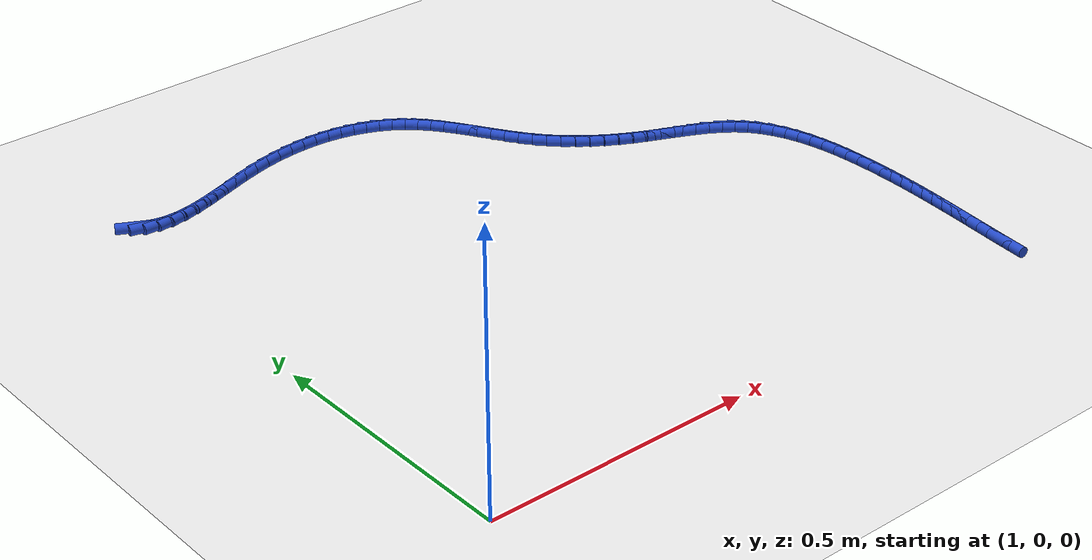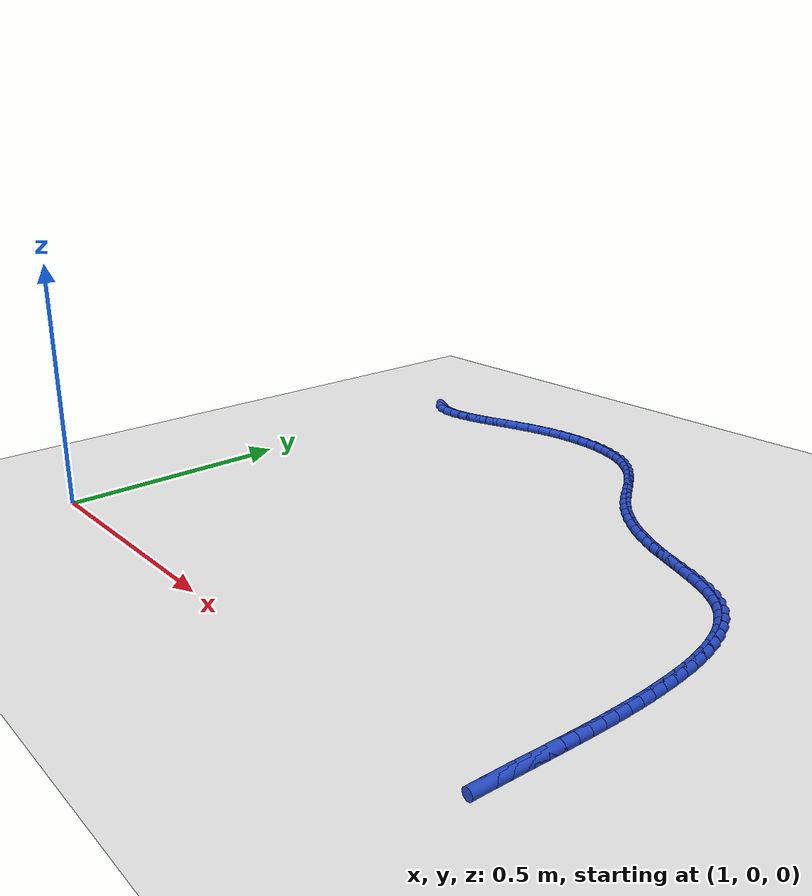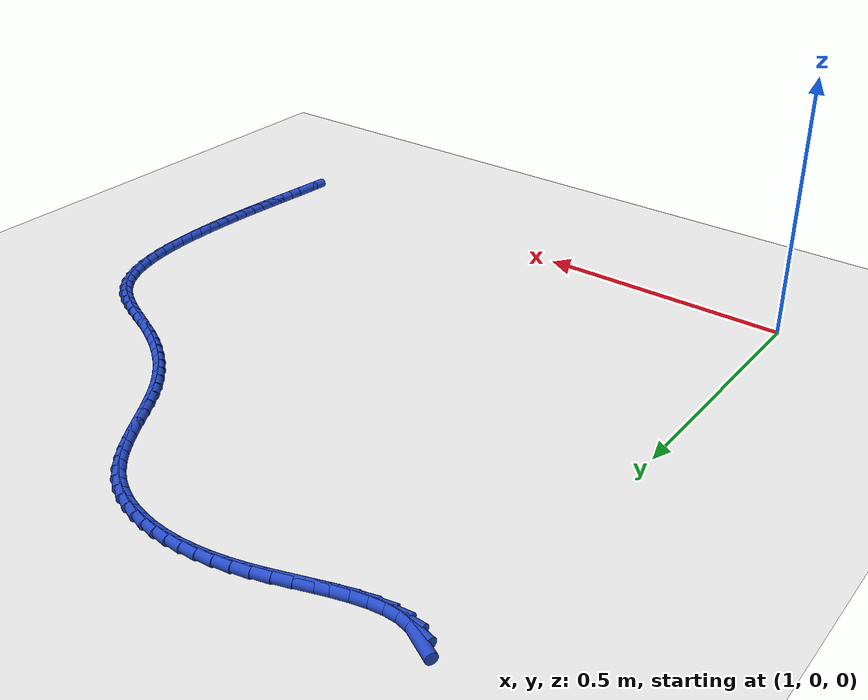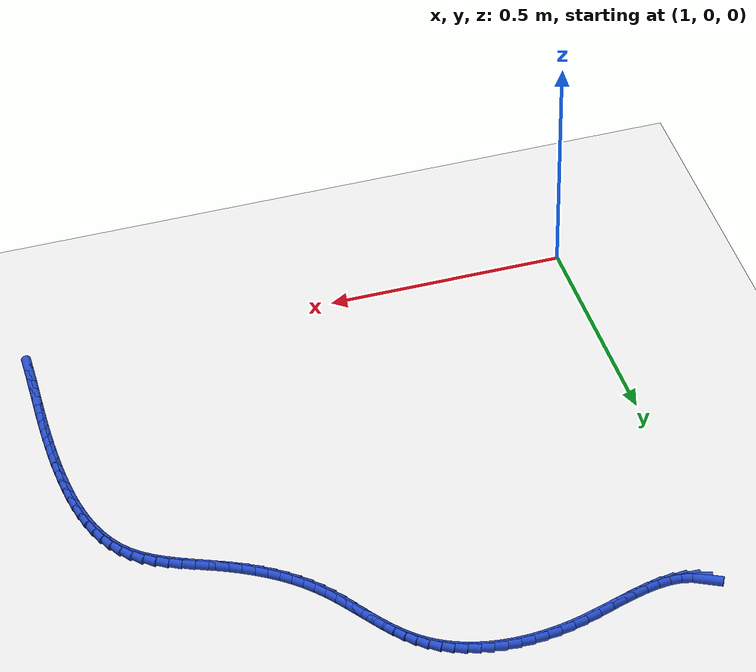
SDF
<sdf version="1.6">
 <world name="default">
  <model name="ground_plane">
   <static>1</static>
   <link name="link">
    <collision name="collision">
     <geometry><plane><normal>0 0 1</normal><size>100 100</size></plane></geometry>
     <surface><friction><ode><mu>100</mu><mu2>50</mu2></ode></friction></surface>
    </collision>
    <visual name="visual">
     <cast_shadows>0</cast_shadows>
     <geometry><plane><normal>0 0 1</normal><size>100 100</size></plane></geometry>
     <material>
      <script><uri>file://media/materials/scripts/gazebo.material</uri><name>Gazebo/WhiteGlow</name></script>
     </material>
    </visual>
   </link>
  </model>
  <model name="line">
   <link name="link_71">
    <pose>1.0518240321882353 1.0434926508809628 0.01 0 1.57 -0.4871833351723494</pose>
    <collision name="collision">
     <geometry><cylinder><radius>0.01</radius><length>0.08</length></cylinder></geometry>
    </collision>
    <visual name="visual">
     <material>
      <script><name>Gazebo/Blue</name><uri>file://media/materials/scripts/gazebo.material</uri></script>
     </material>
     <geometry><cylinder><radius>0.01</radius><length>0.08</length></cylinder></geometry>
    </visual>
   </link>
   <link name="link_72">
    <pose>1.0717406160468312 1.0329413317056149 0.01 0 1.57 -0.23223525083887703</pose>
    <collision name="collision">
     <geometry><cylinder><radius>0.01</radius><length>0.08</length></cylinder></geometry>
    </collision>
    <visual name="visual">
     <material>
      <script><name>Gazebo/Blue</name><uri>file://media/materials/scripts/gazebo.material</uri></script>
     </material>
     <geometry><cylinder><radius>0.01</radius><length>0.08</length></cylinder></geometry>
    </visual>
   </link>
   <link name="link_73">
    <pose>1.093928578310569 1.0276938254861652 0.01 0 1.57 -0.029379121388368363</pose>
    <collision name="collision">
     <geometry><cylinder><radius>0.01</radius><length>0.08</length></cylinder></geometry>
    </collision>
    <visual name="visual">
     <material>
      <script><name>Gazebo/Blue</name><uri>file://media/materials/scripts/gazebo.material</uri></script>
     </material>
     <geometry><cylinder><radius>0.01</radius><length>0.08</length></cylinder></geometry>
    </visual>
   </link>
   <link name="link_74">
    <pose>1.118115048039134 1.0269830437446132 0.01 0 1.57 0.11750350630852928</pose>
    <collision name="collision">
     <geometry><cylinder><radius>0.01</radius><length>0.08</length></cylinder></geometry>
    </collision>
    <visual name="visual">
     <material>
      <script><name>Gazebo/Blue</name><uri>file://media/materials/scripts/gazebo.material</uri></script>
     </material>
     <geometry><cylinder><radius>0.01</radius><length>0.08</length></cylinder></geometry>
    </visual>
   </link>
   <link name="link_75">
    <pose>1.1440271542922127 1.03004189800296 0.01 0 1.57 0.21798348509132873</pose>
    <collision name="collision">
     <geometry><cylinder><radius>0.01</radius><length>0.08</length></cylinder></geometry>
    </collision>
    <visual name="visual">
     <material>
      <script><name>Gazebo/Blue</name><uri>file://media/materials/scripts/gazebo.material</uri></script>
     </material>
     <geometry><cylinder><radius>0.01</radius><length>0.08</length></cylinder></geometry>
    </visual>
   </link>
   <link name="link_76">
    <pose>1.1713920261294903 1.0361032997832051 0.01 0 1.57 0.282867374164812</pose>
    <collision name="collision">
     <geometry><cylinder><radius>0.01</radius><length>0.08</length></cylinder></geometry>
    </collision>
    <visual name="visual">
     <material>
      <script><name>Gazebo/Blue</name><uri>file://media/materials/scripts/gazebo.material</uri></script>
     </material>
     <geometry><cylinder><radius>0.01</radius><length>0.08</length></cylinder></geometry>
    </visual>
   </link>
   <link name="link_77">
    <pose>1.1999367926106537 1.0444001606073499 0.01 0 1.57 0.320159697024955</pose>
    <collision name="collision">
     <geometry><cylinder><radius>0.01</radius><length>0.08</length></cylinder></geometry>
    </collision>
    <visual name="visual">
     <material>
      <script><name>Gazebo/Blue</name><uri>file://media/materials/scripts/gazebo.material</uri></script>
     </material>
     <geometry><cylinder><radius>0.01</radius><length>0.08</length></cylinder></geometry>
    </visual>
   </link>
   <link name="link_78">
    <pose>1.2293885827953885 1.0541653919973943 0.01 0 1.57 0.3347913247855372</pose>
    <collision name="collision">
     <geometry><cylinder><radius>0.01</radius><length>0.08</length></cylinder></geometry>
    </collision>
    <visual name="visual">
     <material>
      <script><name>Gazebo/Blue</name><uri>file://media/materials/scripts/gazebo.material</uri></script>
     </material>
     <geometry><cylinder><radius>0.01</radius><length>0.08</length></cylinder></geometry>
    </visual>
   </link>
   <link name="link_79">
    <pose>1.2594745257433806 1.0646319054753386 0.01 0 1.57 0.3291701039479456</pose>
    <collision name="collision">
     <geometry><cylinder><radius>0.01</radius><length>0.08</length></cylinder></geometry>
    </collision>
    <visual name="visual">
     <material>
      <script><name>Gazebo/Blue</name><uri>file://media/materials/scripts/gazebo.material</uri></script>
     </material>
     <geometry><cylinder><radius>0.01</radius><length>0.08</length></cylinder></geometry>
    </visual>
   </link>
   <link name="link_80">
    <pose>1.2899217505143157 1.0750326125631835 0.01 0 1.57 0.3036432765942432</pose>
    <collision name="collision">
     <geometry><cylinder><radius>0.01</radius><length>0.08</length></cylinder></geometry>
    </collision>
    <visual name="visual">
     <material>
      <script><name>Gazebo/Blue</name><uri>file://media/materials/scripts/gazebo.material</uri></script>
     </material>
     <geometry><cylinder><radius>0.01</radius><length>0.08</length></cylinder></geometry>
    </visual>
   </link>
   <link name="link_81">
    <pose>1.32045738616788 1.0846004247829288 0.01 0 1.57 0.25743303158049047</pose>
    <collision name="collision">
     <geometry><cylinder><radius>0.01</radius><length>0.08</length></cylinder></geometry>
    </collision>
    <visual name="visual">
     <material>
      <script><name>Gazebo/Blue</name><uri>file://media/materials/scripts/gazebo.material</uri></script>
     </material>
     <geometry><cylinder><radius>0.01</radius><length>0.08</length></cylinder></geometry>
    </visual>
   </link>
   <link name="link_82">
    <pose>1.350813701542081 1.0925924771898536 0.01 0 1.57 0.1995703546884958</pose>
    <collision name="collision">
     <geometry><cylinder><radius>0.01</radius><length>0.08</length></cylinder></geometry>
    </collision>
    <visual name="visual">
     <material>
      <script><name>Gazebo/Blue</name><uri>file://media/materials/scripts/gazebo.material</uri></script>
     </material>
     <geometry><cylinder><radius>0.01</radius><length>0.08</length></cylinder></geometry>
    </visual>
   </link>
   <link name="link_83">
    <pose>1.380806345853918 1.0986588726403668 0.01 0 1.57 0.13836589793485587</pose>
    <collision name="collision">
     <geometry><cylinder><radius>0.01</radius><length>0.08</length></cylinder></geometry>
    </collision>
    <visual name="visual">
     <material>
      <script><name>Gazebo/Blue</name><uri>file://media/materials/scripts/gazebo.material</uri></script>
     </material>
     <geometry><cylinder><radius>0.01</radius><length>0.08</length></cylinder></geometry>
    </visual>
   </link>
   <link name="link_84">
    <pose>1.4103186358640938 1.1027686279389566 0.01 0 1.57 0.0735719426953149</pose>
    <collision name="collision">
     <geometry><cylinder><radius>0.01</radius><length>0.08</length></cylinder></geometry>
    </collision>
    <visual name="visual">
     <material>
      <script><name>Gazebo/Blue</name><uri>file://media/materials/scripts/gazebo.material</uri></script>
     </material>
     <geometry><cylinder><radius>0.01</radius><length>0.08</length></cylinder></geometry>
    </visual>
   </link>
   <link name="link_85">
    <pose>1.439235842530674 1.104899969930293 0.01 0 1.57 0.004649652579881191</pose>
    <collision name="collision">
     <geometry><cylinder><radius>0.01</radius><length>0.08</length></cylinder></geometry>
    </collision>
    <visual name="visual">
     <material>
      <script><name>Gazebo/Blue</name><uri>file://media/materials/scripts/gazebo.material</uri></script>
     </material>
     <geometry><cylinder><radius>0.01</radius><length>0.08</length></cylinder></geometry>
    </visual>
   </link>
   <link name="link_86">
    <pose>1.467443236811725 1.1050311254590472 0.01 0 1.57 -0.068941229500601</pose>
    <collision name="collision">
     <geometry><cylinder><radius>0.01</radius><length>0.08</length></cylinder></geometry>
    </collision>
    <visual name="visual">
     <material>
      <script><name>Gazebo/Blue</name><uri>file://media/materials/scripts/gazebo.material</uri></script>
     </material>
     <geometry><cylinder><radius>0.01</radius><length>0.08</length></cylinder></geometry>
    </visual>
   </link>
   <link name="link_87">
    <pose>1.4948260896653125 1.1031403213698883 0.01 0 1.57 -0.14770622485574353</pose>
    <collision name="collision">
     <geometry><cylinder><radius>0.01</radius><length>0.08</length></cylinder></geometry>
    </collision>
    <visual name="visual">
     <material>
      <script><name>Gazebo/Blue</name><uri>file://media/materials/scripts/gazebo.material</uri></script>
     </material>
     <geometry><cylinder><radius>0.01</radius><length>0.08</length></cylinder></geometry>
    </visual>
   </link>
   <link name="link_88">
    <pose>1.5212696720495023 1.0992057845074865 0.01 0 1.57 -0.23206163604165247</pose>
    <collision name="collision">
     <geometry><cylinder><radius>0.01</radius><length>0.08</length></cylinder></geometry>
    </collision>
    <visual name="visual">
     <material>
      <script><name>Gazebo/Blue</name><uri>file://media/materials/scripts/gazebo.material</uri></script>
     </material>
     <geometry><cylinder><radius>0.01</radius><length>0.08</length></cylinder></geometry>
    </visual>
   </link>
   <link name="link_89">
    <pose>1.5466592549223601 1.093205741716513 0.01 0 1.57 -0.32225967340736156</pose>
    <collision name="collision">
     <geometry><cylinder><radius>0.01</radius><length>0.08</length></cylinder></geometry>
    </collision>
    <visual name="visual">
     <material>
      <script><name>Gazebo/Blue</name><uri>file://media/materials/scripts/gazebo.material</uri></script>
     </material>
     <geometry><cylinder><radius>0.01</radius><length>0.08</length></cylinder></geometry>
    </visual>
   </link>
   <link name="link_90">
    <pose>1.5708801092419526 1.0851184198416375 0.01 0 1.57 -0.41829624924878533</pose>
    <collision name="collision">
     <geometry><cylinder><radius>0.01</radius><length>0.08</length></cylinder></geometry>
    </collision>
    <visual name="visual">
     <material>
      <script><name>Gazebo/Blue</name><uri>file://media/materials/scripts/gazebo.material</uri></script>
     </material>
     <geometry><cylinder><radius>0.01</radius><length>0.08</length></cylinder></geometry>
    </visual>
   </link>
   <link name="link_91">
    <pose>1.5938175059663455 1.0749220457275301 0.01 0 1.57 -0.5198136172951838</pose>
    <collision name="collision">
     <geometry><cylinder><radius>0.01</radius><length>0.08</length></cylinder></geometry>
    </collision>
    <visual name="visual">
     <material>
      <script><name>Gazebo/Blue</name><uri>file://media/materials/scripts/gazebo.material</uri></script>
     </material>
     <geometry><cylinder><radius>0.01</radius><length>0.08</length></cylinder></geometry>
    </visual>
   </link>
   <link name="link_92">
    <pose>1.6153567160536046 1.0625948462188617 0.01 0 1.57 -0.6260218217038557</pose>
    <collision name="collision">
     <geometry><cylinder><radius>0.01</radius><length>0.08</length></cylinder></geometry>
    </collision>
    <visual name="visual">
     <material>
      <script><name>Gazebo/Blue</name><uri>file://media/materials/scripts/gazebo.material</uri></script>
     </material>
     <geometry><cylinder><radius>0.01</radius><length>0.08</length></cylinder></geometry>
    </visual>
   </link>
   <link name="link_93">
    <pose>1.6353830104617957 1.0481150481603019 0.01 0 1.57 -0.7349807484777467</pose>
    <collision name="collision">
     <geometry><cylinder><radius>0.01</radius><length>0.08</length></cylinder></geometry>
    </collision>
    <visual name="visual">
     <material>
      <script><name>Gazebo/Blue</name><uri>file://media/materials/scripts/gazebo.material</uri></script>
     </material>
     <geometry><cylinder><radius>0.01</radius><length>0.08</length></cylinder></geometry>
    </visual>
   </link>
   <link name="link_94">
    <pose>1.6537942600266167 1.03147261370742 0.01 0 1.57 -0.8329595768587374</pose>
    <collision name="collision">
     <geometry><cylinder><radius>0.01</radius><length>0.08</length></cylinder></geometry>
    </collision>
    <visual name="visual">
     <material>
      <script><name>Gazebo/Blue</name><uri>file://media/materials/scripts/gazebo.material</uri></script>
     </material>
     <geometry><cylinder><radius>0.01</radius><length>0.08</length></cylinder></geometry>
    </visual>
   </link>
   <link name="link_95">
    <pose>1.67071105895697 1.0128649457628593 0.01 0 1.57 -0.9090015001255707</pose>
    <collision name="collision">
     <geometry><cylinder><radius>0.01</radius><length>0.08</length></cylinder></geometry>
    </collision>
    <visual name="visual">
     <material>
      <script><name>Gazebo/Blue</name><uri>file://media/materials/scripts/gazebo.material</uri></script>
     </material>
     <geometry><cylinder><radius>0.01</radius><length>0.08</length></cylinder></geometry>
    </visual>
   </link>
   <link name="link_96">
    <pose>1.6864448190754133 0.9926671714966476 0.01 0 1.57 -0.9637353105981334</pose>
    <collision name="collision">
     <geometry><cylinder><radius>0.01</radius><length>0.08</length></cylinder></geometry>
    </collision>
    <visual name="visual">
     <material>
      <script><name>Gazebo/Blue</name><uri>file://media/materials/scripts/gazebo.material</uri></script>
     </material>
     <geometry><cylinder><radius>0.01</radius><length>0.08</length></cylinder></geometry>
    </visual>
   </link>
   <link name="link_97">
    <pose>1.7013131230737246 0.971260165521042 0.01 0 1.57 -0.9986233680445108</pose>
    <collision name="collision">
     <geometry><cylinder><radius>0.01</radius><length>0.08</length></cylinder></geometry>
    </collision>
    <visual name="visual">
     <material>
      <script><name>Gazebo/Blue</name><uri>file://media/materials/scripts/gazebo.material</uri></script>
     </material>
     <geometry><cylinder><radius>0.01</radius><length>0.08</length></cylinder></geometry>
    </visual>
   </link>
   <link name="link_98">
    <pose>1.7156335536436802 0.9490248024483002 0.01 0 1.57 -1.0149483823472332</pose>
    <collision name="collision">
     <geometry><cylinder><radius>0.01</radius><length>0.08</length></cylinder></geometry>
    </collision>
    <visual name="visual">
     <material>
      <script><name>Gazebo/Blue</name><uri>file://media/materials/scripts/gazebo.material</uri></script>
     </material>
     <geometry><cylinder><radius>0.01</radius><length>0.08</length></cylinder></geometry>
    </visual>
   </link>
   <link name="link_99">
    <pose>1.7297236934770592 0.9263419568906804 0.01 0 1.57 -1.013493314231102</pose>
    <collision name="collision">
     <geometry><cylinder><radius>0.01</radius><length>0.08</length></cylinder></geometry>
    </collision>
    <visual name="visual">
     <material>
      <script><name>Gazebo/Blue</name><uri>file://media/materials/scripts/gazebo.material</uri></script>
     </material>
     <geometry><cylinder><radius>0.01</radius><length>0.08</length></cylinder></geometry>
    </visual>
   </link>
   <link name="link_100">
    <pose>1.743901125265639 0.90359250346044 0.01 0 1.57 -0.9944388074913874</pose>
    <collision name="collision">
     <geometry><cylinder><radius>0.01</radius><length>0.08</length></cylinder></geometry>
    </collision>
    <visual name="visual">
     <material>
      <script><name>Gazebo/Blue</name><uri>file://media/materials/scripts/gazebo.material</uri></script>
     </material>
     <geometry><cylinder><radius>0.01</radius><length>0.08</length></cylinder></geometry>
    </visual>
   </link>
   <link name="link_101">
    <pose>1.7584834317011961 0.8811573167698373 0.01 0 1.57 -0.9573978570832319</pose>
    <collision name="collision">
     <geometry><cylinder><radius>0.01</radius><length>0.08</length></cylinder></geometry>
    </collision>
    <visual name="visual">
     <material>
      <script><name>Gazebo/Blue</name><uri>file://media/materials/scripts/gazebo.material</uri></script>
     </material>
     <geometry><cylinder><radius>0.01</radius><length>0.08</length></cylinder></geometry>
    </visual>
   </link>
   <link name="link_102">
    <pose>1.7737881954755097 0.8594172714311302 0.01 0 1.57 -0.9016184415037701</pose>
    <collision name="collision">
     <geometry><cylinder><radius>0.01</radius><length>0.08</length></cylinder></geometry>
    </collision>
    <visual name="visual">
     <material>
      <script><name>Gazebo/Blue</name><uri>file://media/materials/scripts/gazebo.material</uri></script>
     </material>
     <geometry><cylinder><radius>0.01</radius><length>0.08</length></cylinder></geometry>
    </visual>
   </link>
   <link name="link_103">
    <pose>1.7901323308876111 0.8387524771056668 0.01 0 1.57 -0.8328548012302313</pose>
    <collision name="collision">
     <geometry><cylinder><radius>0.01</radius><length>0.08</length></cylinder></geometry>
    </collision>
    <visual name="visual">
     <material>
      <script><name>Gazebo/Blue</name><uri>file://media/materials/scripts/gazebo.material</uri></script>
     </material>
     <geometry><cylinder><radius>0.01</radius><length>0.08</length></cylinder></geometry>
    </visual>
   </link>
   <link name="link_104">
    <pose>1.8077186423947242 0.8194124489383435 0.01 0 1.57 -0.765143721577936</pose>
    <collision name="collision">
     <geometry><cylinder><radius>0.01</radius><length>0.08</length></cylinder></geometry>
    </collision>
    <visual name="visual">
     <material>
      <script><name>Gazebo/Blue</name><uri>file://media/materials/scripts/gazebo.material</uri></script>
     </material>
     <geometry><cylinder><radius>0.01</radius><length>0.08</length></cylinder></geometry>
    </visual>
   </link>
   <link name="link_105">
    <pose>1.8265077148927307 0.8013694906960884 0.01 0 1.57 -0.7008615310752775</pose>
    <collision name="collision">
     <geometry><cylinder><radius>0.01</radius><length>0.08</length></cylinder></geometry>
    </collision>
    <visual name="visual">
     <material>
      <script><name>Gazebo/Blue</name><uri>file://media/materials/scripts/gazebo.material</uri></script>
     </material>
     <geometry><cylinder><radius>0.01</radius><length>0.08</length></cylinder></geometry>
    </visual>
   </link>
   <link name="link_106">
    <pose>1.8464291952517484 0.7845604987133875 0.01 0 1.57 -0.6404587628681081</pose>
    <collision name="collision">
     <geometry><cylinder><radius>0.01</radius><length>0.08</length></cylinder></geometry>
    </collision>
    <visual name="visual">
     <material>
      <script><name>Gazebo/Blue</name><uri>file://media/materials/scripts/gazebo.material</uri></script>
     </material>
     <geometry><cylinder><radius>0.01</radius><length>0.08</length></cylinder></geometry>
    </visual>
   </link>
   <link name="link_107">
    <pose>1.8674127303418941 0.7689223693247269 0.01 0 1.57 -0.5842193241000063</pose>
    <collision name="collision">
     <geometry><cylinder><radius>0.01</radius><length>0.08</length></cylinder></geometry>
    </collision>
    <visual name="visual">
     <material>
      <script><name>Gazebo/Blue</name><uri>file://media/materials/scripts/gazebo.material</uri></script>
     </material>
     <geometry><cylinder><radius>0.01</radius><length>0.08</length></cylinder></geometry>
    </visual>
   </link>
   <link name="link_108">
    <pose>1.8893879670332872 0.7543919988645936 0.01 0 1.57 -0.5322798909448799</pose>
    <collision name="collision">
     <geometry><cylinder><radius>0.01</radius><length>0.08</length></cylinder></geometry>
    </collision>
    <visual name="visual">
     <material>
      <script><name>Gazebo/Blue</name><uri>file://media/materials/scripts/gazebo.material</uri></script>
     </material>
     <geometry><cylinder><radius>0.01</radius><length>0.08</length></cylinder></geometry>
    </visual>
   </link>
   <link name="link_109">
    <pose>1.9122845521960437 0.7409062836674731 0.01 0 1.57 -0.48465719867056195</pose>
    <collision name="collision">
     <geometry><cylinder><radius>0.01</radius><length>0.08</length></cylinder></geometry>
    </collision>
    <visual name="visual">
     <material>
      <script><name>Gazebo/Blue</name><uri>file://media/materials/scripts/gazebo.material</uri></script>
     </material>
     <geometry><cylinder><radius>0.01</radius><length>0.08</length></cylinder></geometry>
    </visual>
   </link>
   <link name="link_110">
    <pose>1.9360321327002818 0.7284021200678529 0.01 0 1.57 -0.4434277999838692</pose>
    <collision name="collision">
     <geometry><cylinder><radius>0.01</radius><length>0.08</length></cylinder></geometry>
    </collision>
    <visual name="visual">
     <material>
      <script><name>Gazebo/Blue</name><uri>file://media/materials/scripts/gazebo.material</uri></script>
     </material>
     <geometry><cylinder><radius>0.01</radius><length>0.08</length></cylinder></geometry>
    </visual>
   </link>
   <link name="link_111">
    <pose>1.960516049609759 0.7167728757892747 0.01 0 1.57 -0.4201686258911148</pose>
    <collision name="collision">
     <geometry><cylinder><radius>0.01</radius><length>0.08</length></cylinder></geometry>
    </collision>
    <visual name="visual">
     <material>
      <script><name>Gazebo/Blue</name><uri>file://media/materials/scripts/gazebo.material</uri></script>
     </material>
     <geometry><cylinder><radius>0.01</radius><length>0.08</length></cylinder></geometry>
    </visual>
   </link>
   <link name="link_112">
    <pose>1.9853728461894116 0.7056674850717604 0.01 0 1.57 -0.4183854429939083</pose>
    <collision name="collision">
     <geometry><cylinder><radius>0.01</radius><length>0.08</length></cylinder></geometry>
    </collision>
    <visual name="visual">
     <material>
      <script><name>Gazebo/Blue</name><uri>file://media/materials/scripts/gazebo.material</uri></script>
     </material>
     <geometry><cylinder><radius>0.01</radius><length>0.08</length></cylinder></geometry>
    </visual>
   </link>
   <link name="link_113">
    <pose>2.010152282327561 0.6946496210993327 0.01 0 1.57 -0.4382941709003159</pose>
    <collision name="collision">
     <geometry><cylinder><radius>0.01</radius><length>0.08</length></cylinder></geometry>
    </collision>
    <visual name="visual">
     <material>
      <script><name>Gazebo/Blue</name><uri>file://media/materials/scripts/gazebo.material</uri></script>
     </material>
     <geometry><cylinder><radius>0.01</radius><length>0.08</length></cylinder></geometry>
    </visual>
   </link>
   <link name="link_114">
    <pose>2.0344040283144094 0.6832828690295936 0.01 0 1.57 -0.4811993420768887</pose>
    <collision name="collision">
     <geometry><cylinder><radius>0.01</radius><length>0.08</length></cylinder></geometry>
    </collision>
    <visual name="visual">
     <material>
      <script><name>Gazebo/Blue</name><uri>file://media/materials/scripts/gazebo.material</uri></script>
     </material>
     <geometry><cylinder><radius>0.01</radius><length>0.08</length></cylinder></geometry>
    </visual>
   </link>
   <link name="link_115">
    <pose>2.0576777544401605 0.6711308140201443 0.01 0 1.57 -0.5493429349594073</pose>
    <collision name="collision">
     <geometry><cylinder><radius>0.01</radius><length>0.08</length></cylinder></geometry>
    </collision>
    <visual name="visual">
     <material>
      <script><name>Gazebo/Blue</name><uri>file://media/materials/scripts/gazebo.material</uri></script>
     </material>
     <geometry><cylinder><radius>0.01</radius><length>0.08</length></cylinder></geometry>
    </visual>
   </link>
   <link name="link_116">
    <pose>2.0795231309950184 0.6577570412285862 0.01 0 1.57 -0.6453218916728289</pose>
    <collision name="collision">
     <geometry><cylinder><radius>0.01</radius><length>0.08</length></cylinder></geometry>
    </collision>
    <visual name="visual">
     <material>
      <script><name>Gazebo/Blue</name><uri>file://media/materials/scripts/gazebo.material</uri></script>
     </material>
     <geometry><cylinder><radius>0.01</radius><length>0.08</length></cylinder></geometry>
    </visual>
   </link>
   <link name="link_117">
    <pose>2.0994898282691867 0.6427251358125209 0.01 0 1.57 -0.7705104169662322</pose>
    <collision name="collision">
     <geometry><cylinder><radius>0.01</radius><length>0.08</length></cylinder></geometry>
    </collision>
    <visual name="visual">
     <material>
      <script><name>Gazebo/Blue</name><uri>file://media/materials/scripts/gazebo.material</uri></script>
     </material>
     <geometry><cylinder><radius>0.01</radius><length>0.08</length></cylinder></geometry>
    </visual>
   </link>
   <link name="link_118">
    <pose>2.1171305555965665 0.6256020022719686 0.01 0 1.57 -0.909547016829797</pose>
    <collision name="collision">
     <geometry><cylinder><radius>0.01</radius><length>0.08</length></cylinder></geometry>
    </collision>
    <visual name="visual">
     <material>
      <script><name>Gazebo/Blue</name><uri>file://media/materials/scripts/gazebo.material</uri></script>
     </material>
     <geometry><cylinder><radius>0.01</radius><length>0.08</length></cylinder></geometry>
    </visual>
   </link>
   <link name="link_119">
    <pose>2.1322252755037665 0.6062027584388807 0.01 0 1.57 -1.0357799860740893</pose>
    <collision name="collision">
     <geometry><cylinder><radius>0.01</radius><length>0.08</length></cylinder></geometry>
    </collision>
    <visual name="visual">
     <material>
      <script><name>Gazebo/Blue</name><uri>file://media/materials/scripts/gazebo.material</uri></script>
     </material>
     <geometry><cylinder><radius>0.01</radius><length>0.08</length></cylinder></geometry>
    </visual>
   </link>
   <link name="link_120">
    <pose>2.1449347759910204 0.5847584721196316 0.01 0 1.57 -1.1453288053670552</pose>
    <collision name="collision">
     <geometry><cylinder><radius>0.01</radius><length>0.08</length></cylinder></geometry>
    </collision>
    <visual name="visual">
     <material>
      <script><name>Gazebo/Blue</name><uri>file://media/materials/scripts/gazebo.material</uri></script>
     </material>
     <geometry><cylinder><radius>0.01</radius><length>0.08</length></cylinder></geometry>
    </visual>
   </link>
   <link name="link_121">
    <pose>2.1554561888292967 0.5615399069696227 0.01 0 1.57 -1.238534366731323</pose>
    <collision name="collision">
     <geometry><cylinder><radius>0.01</radius><length>0.08</length></cylinder></geometry>
    </collision>
    <visual name="visual">
     <material>
      <script><name>Gazebo/Blue</name><uri>file://media/materials/scripts/gazebo.material</uri></script>
     </material>
     <geometry><cylinder><radius>0.01</radius><length>0.08</length></cylinder></geometry>
    </visual>
   </link>
   <link name="link_122">
    <pose>2.1639866457895627 0.5368178266442549 0.01 0 1.57 -1.316847790235678</pose>
    <collision name="collision">
     <geometry><cylinder><radius>0.01</radius><length>0.08</length></cylinder></geometry>
    </collision>
    <visual name="visual">
     <material>
      <script><name>Gazebo/Blue</name><uri>file://media/materials/scripts/gazebo.material</uri></script>
     </material>
     <geometry><cylinder><radius>0.01</radius><length>0.08</length></cylinder></geometry>
    </visual>
   </link>
   <link name="link_123">
    <pose>2.170723278642786 0.51086299479893 0.01 0 1.57 -1.3821114107903565</pose>
    <collision name="collision">
     <geometry><cylinder><radius>0.01</radius><length>0.08</length></cylinder></geometry>
    </collision>
    <visual name="visual">
     <material>
      <script><name>Gazebo/Blue</name><uri>file://media/materials/scripts/gazebo.material</uri></script>
     </material>
     <geometry><cylinder><radius>0.01</radius><length>0.08</length></cylinder></geometry>
    </visual>
   </link>
   <link name="link_124">
    <pose>2.175863219159933 0.48394617508904897 0.01 0 1.57 -1.4361347206635977</pose>
    <collision name="collision">
     <geometry><cylinder><radius>0.01</radius><length>0.08</length></cylinder></geometry>
    </collision>
    <visual name="visual">
     <material>
      <script><name>Gazebo/Blue</name><uri>file://media/materials/scripts/gazebo.material</uri></script>
     </material>
     <geometry><cylinder><radius>0.01</radius><length>0.08</length></cylinder></geometry>
    </visual>
   </link>
   <link name="link_125">
    <pose>2.1796035991119727 0.4563381311700131 0.01 0 1.57 -1.480493657529519</pose>
    <collision name="collision">
     <geometry><cylinder><radius>0.01</radius><length>0.08</length></cylinder></geometry>
    </collision>
    <visual name="visual">
     <material>
      <script><name>Gazebo/Blue</name><uri>file://media/materials/scripts/gazebo.material</uri></script>
     </material>
     <geometry><cylinder><radius>0.01</radius><length>0.08</length></cylinder></geometry>
    </visual>
   </link>
   <link name="link_126">
    <pose>2.182141550269873 0.42830962669722344 0.01 0 1.57 -1.5164583875699469</pose>
    <collision name="collision">
     <geometry><cylinder><radius>0.01</radius><length>0.08</length></cylinder></geometry>
    </collision>
    <visual name="visual">
     <material>
      <script><name>Gazebo/Blue</name><uri>file://media/materials/scripts/gazebo.material</uri></script>
     </material>
     <geometry><cylinder><radius>0.01</radius><length>0.08</length></cylinder></geometry>
    </visual>
   </link>
   <link name="link_127">
    <pose>2.183674204404599 0.40013142532608165 0.01 0 1.57 -1.5449801508345082</pose>
    <collision name="collision">
     <geometry><cylinder><radius>0.01</radius><length>0.08</length></cylinder></geometry>
    </collision>
    <visual name="visual">
     <material>
      <script><name>Gazebo/Blue</name><uri>file://media/materials/scripts/gazebo.material</uri></script>
     </material>
     <geometry><cylinder><radius>0.01</radius><length>0.08</length></cylinder></geometry>
    </visual>
   </link>
   <link name="link_128">
    <pose>2.184398693287121 0.3720742907119891 0.01 0 1.57 -1.5669402102395258</pose>
    <collision name="collision">
     <geometry><cylinder><radius>0.01</radius><length>0.08</length></cylinder></geometry>
    </collision>
    <visual name="visual">
     <material>
      <script><name>Gazebo/Blue</name><uri>file://media/materials/scripts/gazebo.material</uri></script>
     </material>
     <geometry><cylinder><radius>0.01</radius><length>0.08</length></cylinder></geometry>
    </visual>
   </link>
   <link name="link_129">
    <pose>2.1845054331365628 0.34439376839172453 0.01 0 1.57 1.5560502736167499</pose>
    <collision name="collision">
     <geometry><cylinder><radius>0.01</radius><length>0.08</length></cylinder></geometry>
    </collision>
    <visual name="visual">
     <material>
      <script><name>Gazebo/Blue</name><uri>file://media/materials/scripts/gazebo.material</uri></script>
     </material>
     <geometry><cylinder><radius>0.01</radius><length>0.08</length></cylinder></geometry>
    </visual>
   </link>
   <link name="link_130">
    <pose>2.184103840725566 0.317161850976866 0.01 0 1.57 1.5389734054754498</pose>
    <collision name="collision">
     <geometry><cylinder><radius>0.01</radius><length>0.08</length></cylinder></geometry>
    </collision>
    <visual name="visual">
     <material>
      <script><name>Gazebo/Blue</name><uri>file://media/materials/scripts/gazebo.material</uri></script>
     </material>
     <geometry><cylinder><radius>0.01</radius><length>0.08</length></cylinder></geometry>
    </visual>
   </link>
   <link name="link_131">
    <pose>2.183249648757963 0.2903288775579563 0.01 0 1.57 1.5235602482520827</pose>
    <collision name="collision">
     <geometry><cylinder><radius>0.01</radius><length>0.08</length></cylinder></geometry>
    </collision>
    <visual name="visual">
     <material>
      <script><name>Gazebo/Blue</name><uri>file://media/materials/scripts/gazebo.material</uri></script>
     </material>
     <geometry><cylinder><radius>0.01</radius><length>0.08</length></cylinder></geometry>
    </visual>
   </link>
   <link name="link_132">
    <pose>2.181997628881045 0.26384300937437066 0.01 0 1.57 1.509968842959111</pose>
    <collision name="collision">
     <geometry><cylinder><radius>0.01</radius><length>0.08</length></cylinder></geometry>
    </collision>
    <visual name="visual">
     <material>
      <script><name>Gazebo/Blue</name><uri>file://media/materials/scripts/gazebo.material</uri></script>
     </material>
     <geometry><cylinder><radius>0.01</radius><length>0.08</length></cylinder></geometry>
    </visual>
   </link>
   <link name="link_133">
    <pose>2.180402552742103 0.23765240766548326 0.01 0 1.57 1.4983389688022228</pose>
    <collision name="collision">
     <geometry><cylinder><radius>0.01</radius><length>0.08</length></cylinder></geometry>
    </collision>
    <visual name="visual">
     <material>
      <script><name>Gazebo/Blue</name><uri>file://media/materials/scripts/gazebo.material</uri></script>
     </material>
     <geometry><cylinder><radius>0.01</radius><length>0.08</length></cylinder></geometry>
    </visual>
   </link>
   <link name="link_134">
    <pose>2.178519191988432 0.2117052336706689 0.01 0 1.57 1.4887897944942143</pose>
    <collision name="collision">
     <geometry><cylinder><radius>0.01</radius><length>0.08</length></cylinder></geometry>
    </collision>
    <visual name="visual">
     <material>
      <script><name>Gazebo/Blue</name><uri>file://media/materials/scripts/gazebo.material</uri></script>
     </material>
     <geometry><cylinder><radius>0.01</radius><length>0.08</length></cylinder></geometry>
    </visual>
   </link>
   <link name="link_135">
    <pose>2.1764023182673204 0.18594964862930144 0.01 0 1.57 1.4814180583985614</pose>
    <collision name="collision">
     <geometry><cylinder><radius>0.01</radius><length>0.08</length></cylinder></geometry>
    </collision>
    <visual name="visual">
     <material>
      <script><name>Gazebo/Blue</name><uri>file://media/materials/scripts/gazebo.material</uri></script>
     </material>
     <geometry><cylinder><radius>0.01</radius><length>0.08</length></cylinder></geometry>
    </visual>
   </link>
   <link name="link_136">
    <pose>2.1741067032260615 0.16033381378075642 0.01 0 1.57 1.4762967488727219</pose>
    <collision name="collision">
     <geometry><cylinder><radius>0.01</radius><length>0.08</length></cylinder></geometry>
    </collision>
    <visual name="visual">
     <material>
      <script><name>Gazebo/Blue</name><uri>file://media/materials/scripts/gazebo.material</uri></script>
     </material>
     <geometry><cylinder><radius>0.01</radius><length>0.08</length></cylinder></geometry>
    </visual>
   </link>
   <link name="link_137">
    <pose>2.171687118511947 0.13480589036440802 0.01 0 1.57 1.4734742365899125</pose>
    <collision name="collision">
     <geometry><cylinder><radius>0.01</radius><length>0.08</length></cylinder></geometry>
    </collision>
    <visual name="visual">
     <material>
      <script><name>Gazebo/Blue</name><uri>file://media/materials/scripts/gazebo.material</uri></script>
     </material>
     <geometry><cylinder><radius>0.01</radius><length>0.08</length></cylinder></geometry>
    </visual>
   </link>
   <link name="link_138">
    <pose>2.169198335772269 0.10931403961963082 0.01 0 1.57 1.4729738046842333</pose>
    <collision name="collision">
     <geometry><cylinder><radius>0.01</radius><length>0.08</length></cylinder></geometry>
    </collision>
    <visual name="visual">
     <material>
      <script><name>Gazebo/Blue</name><uri>file://media/materials/scripts/gazebo.material</uri></script>
     </material>
     <geometry><cylinder><radius>0.01</radius><length>0.08</length></cylinder></geometry>
    </visual>
   </link>
   <link name="link_139">
    <pose>2.1666951266543197 0.08380642278579932 0.01 0 1.57 1.4747935289528051</pose>
    <collision name="collision">
     <geometry><cylinder><radius>0.01</radius><length>0.08</length></cylinder></geometry>
    </collision>
    <visual name="visual">
     <material>
      <script><name>Gazebo/Blue</name><uri>file://media/materials/scripts/gazebo.material</uri></script>
     </material>
     <geometry><cylinder><radius>0.01</radius><length>0.08</length></cylinder></geometry>
    </visual>
   </link>
   <link name="link_140">
    <pose>2.164232262805389 0.058231201102287695 0.01 0 1.57 1.478906475950725</pose>
    <collision name="collision">
     <geometry><cylinder><radius>0.01</radius><length>0.08</length></cylinder></geometry>
    </collision>
    <visual name="visual">
     <material>
      <script><name>Gazebo/Blue</name><uri>file://media/materials/scripts/gazebo.material</uri></script>
     </material>
     <geometry><cylinder><radius>0.01</radius><length>0.08</length></cylinder></geometry>
    </visual>
   </link>
   <link name="link_141">
    <pose>2.161864515872772 0.03253653580847141 0.01 0 1.57 1.4852088807024406</pose>
    <collision name="collision">
     <geometry><cylinder><radius>0.01</radius><length>0.08</length></cylinder></geometry>
    </collision>
    <visual name="visual">
     <material>
      <script><name>Gazebo/Blue</name><uri>file://media/materials/scripts/gazebo.material</uri></script>
     </material>
     <geometry><cylinder><radius>0.01</radius><length>0.08</length></cylinder></geometry>
    </visual>
   </link>
  </model>
 </world>
</sdf>
